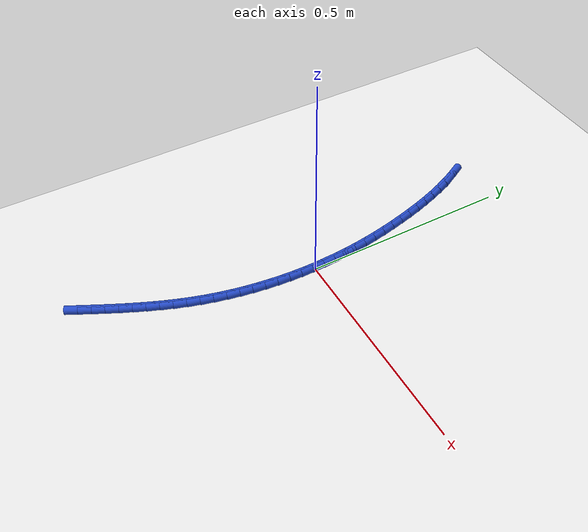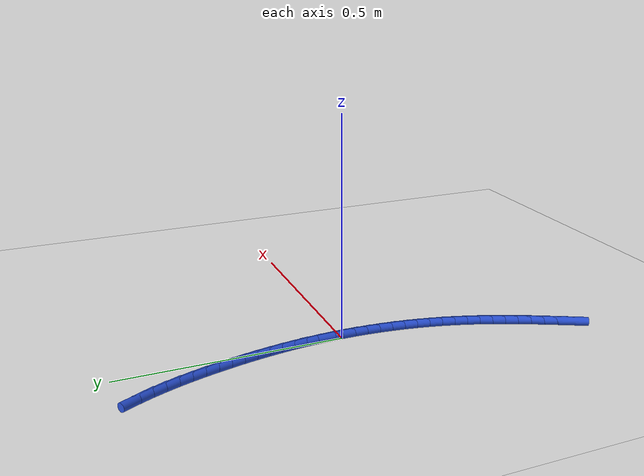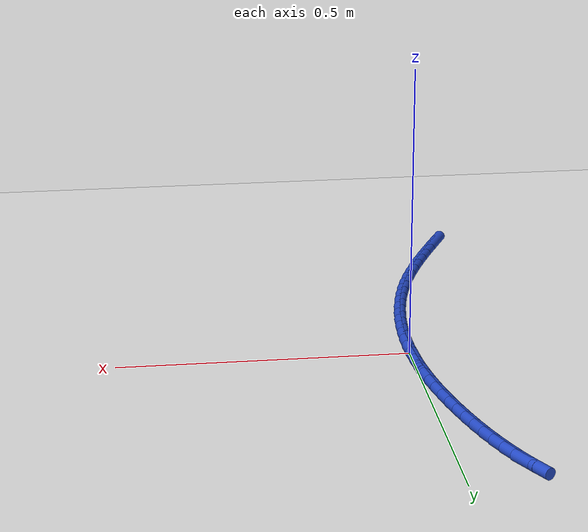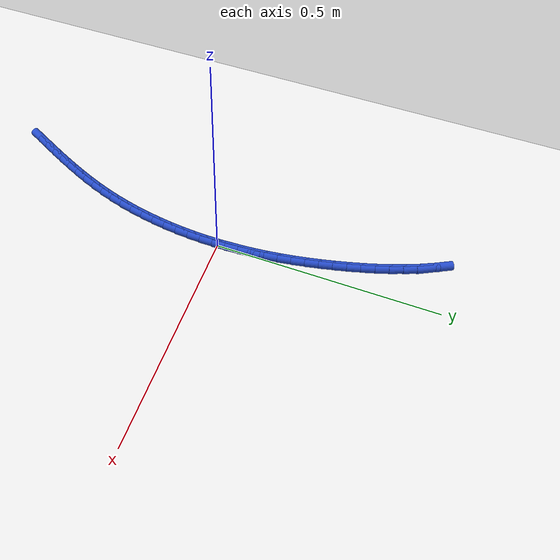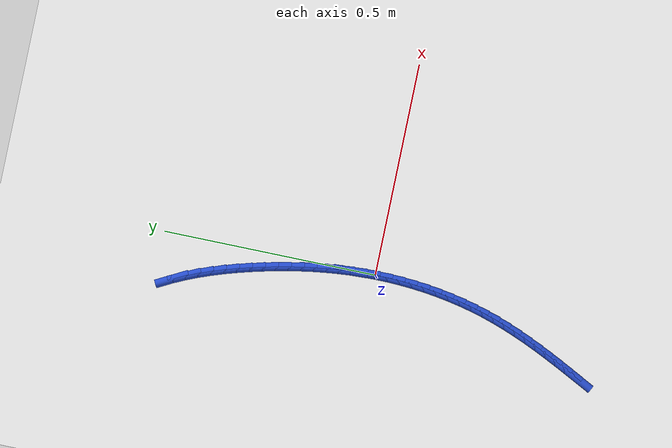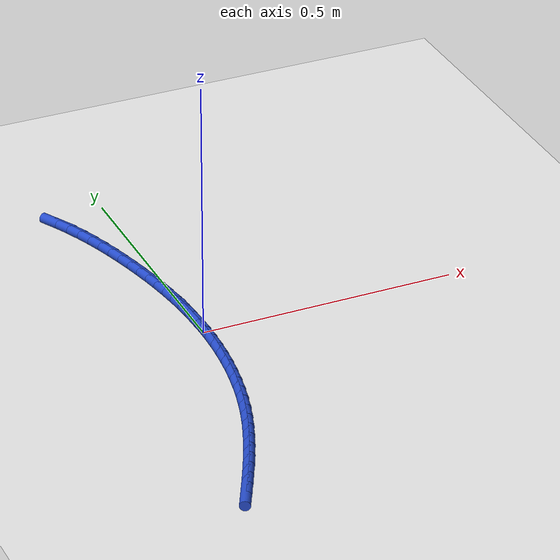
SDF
<sdf version="1.6">
 <world name="default">
  <model name="ground_plane">
   <static>1</static>
   <link name="link">
    <collision name="collision">
     <geometry><plane><normal>0 0 1</normal><size>100 100</size></plane></geometry>
     <surface><friction><ode><mu>100</mu><mu2>50</mu2></ode></friction></surface>
    </collision>
    <visual name="visual">
     <cast_shadows>0</cast_shadows>
     <geometry><plane><normal>0 0 1</normal><size>100 100</size></plane></geometry>
     <material>
      <script><uri>file://media/materials/scripts/gazebo.material</uri><name>Gazebo/WhiteGlow</name></script>
     </material>
    </visual>
   </link>
  </model>
  <model name="line">
   <link name="link_0">
    <pose>-3.469446951953614e-18 -4.163336342344337e-17 0.01 0 1.57 -1.5466826521365722</pose>
    <collision name="collision">
     <geometry><cylinder><radius>0.01</radius><length>0.08</length></cylinder></geometry>
    </collision>
    <visual name="visual">
     <material>
      <script><name>Gazebo/Blue</name><uri>file://media/materials/scripts/gazebo.material</uri></script>
     </material>
     <geometry><cylinder><radius>0.01</radius><length>0.08</length></cylinder></geometry>
    </visual>
   </link>
   <link name="link_1">
    <pose>-0.0007096333509930941 0.029422964868558183 0.01 0 1.57 -1.5170776853234302</pose>
    <collision name="collision">
     <geometry><cylinder><radius>0.01</radius><length>0.08</length></cylinder></geometry>
    </collision>
    <visual name="visual">
     <material>
      <script><name>Gazebo/Blue</name><uri>file://media/materials/scripts/gazebo.material</uri></script>
     </material>
     <geometry><cylinder><radius>0.01</radius><length>0.08</length></cylinder></geometry>
    </visual>
   </link>
   <link name="link_2">
    <pose>-0.0022868037492940483 0.05875455232076186 0.01 0 1.57 -1.4883658231498254</pose>
    <collision name="collision">
     <geometry><cylinder><radius>0.01</radius><length>0.08</length></cylinder></geometry>
    </collision>
    <visual name="visual">
     <material>
      <script><name>Gazebo/Blue</name><uri>file://media/materials/scripts/gazebo.material</uri></script>
     </material>
     <geometry><cylinder><radius>0.01</radius><length>0.08</length></cylinder></geometry>
    </visual>
   </link>
   <link name="link_3">
    <pose>-0.004703602148593343 0.08800734023232486 0.01 0 1.57 -1.4606276589522176</pose>
    <collision name="collision">
     <geometry><cylinder><radius>0.01</radius><length>0.08</length></cylinder></geometry>
    </collision>
    <visual name="visual">
     <material>
      <script><name>Gazebo/Blue</name><uri>file://media/materials/scripts/gazebo.material</uri></script>
     </material>
     <geometry><cylinder><radius>0.01</radius><length>0.08</length></cylinder></geometry>
    </visual>
   </link>
   <link name="link_4">
    <pose>-0.00793211950258145 0.11719390647896095 0.01 0 1.57 -1.4339324970044878</pose>
    <collision name="collision">
     <geometry><cylinder><radius>0.01</radius><length>0.08</length></cylinder></geometry>
    </collision>
    <visual name="visual">
     <material>
      <script><name>Gazebo/Blue</name><uri>file://media/materials/scripts/gazebo.material</uri></script>
     </material>
     <geometry><cylinder><radius>0.01</radius><length>0.08</length></cylinder></geometry>
    </visual>
   </link>
   <link name="link_5">
    <pose>-0.011944446764948845 0.14632682893638393 0.01 0 1.57 -1.4083383048291738</pose>
    <collision name="collision">
     <geometry><cylinder><radius>0.01</radius><length>0.08</length></cylinder></geometry>
    </collision>
    <visual name="visual">
     <material>
      <script><name>Gazebo/Blue</name><uri>file://media/materials/scripts/gazebo.material</uri></script>
     </material>
     <geometry><cylinder><radius>0.01</radius><length>0.08</length></cylinder></geometry>
    </visual>
   </link>
   <link name="link_6">
    <pose>-0.016712674889385996 0.17541868548030773 0.01 0 1.57 -1.3838919719361213</pose>
    <collision name="collision">
     <geometry><cylinder><radius>0.01</radius><length>0.08</length></cylinder></geometry>
    </collision>
    <visual name="visual">
     <material>
      <script><name>Gazebo/Blue</name><uri>file://media/materials/scripts/gazebo.material</uri></script>
     </material>
     <geometry><cylinder><radius>0.01</radius><length>0.08</length></cylinder></geometry>
    </visual>
   </link>
   <link name="link_7">
    <pose>-0.02220889482958338 0.20448205398644603 0.01 0 1.57 -1.3606298222673068</pose>
    <collision name="collision">
     <geometry><cylinder><radius>0.01</radius><length>0.08</length></cylinder></geometry>
    </collision>
    <visual name="visual">
     <material>
      <script><name>Gazebo/Blue</name><uri>file://media/materials/scripts/gazebo.material</uri></script>
     </material>
     <geometry><cylinder><radius>0.01</radius><length>0.08</length></cylinder></geometry>
    </visual>
   </link>
   <link name="link_8">
    <pose>-0.028405197539231476 0.23352951233051272 0.01 0 1.57 -1.3385783231318669</pose>
    <collision name="collision">
     <geometry><cylinder><radius>0.01</radius><length>0.08</length></cylinder></geometry>
    </collision>
    <visual name="visual">
     <material>
      <script><name>Gazebo/Blue</name><uri>file://media/materials/scripts/gazebo.material</uri></script>
     </material>
     <geometry><cylinder><radius>0.01</radius><length>0.08</length></cylinder></geometry>
    </visual>
   </link>
   <link name="link_9">
    <pose>-0.03527367397202075 0.26257363838822156 0.01 0 1.57 -1.317455571323649</pose>
    <collision name="collision">
     <geometry><cylinder><radius>0.01</radius><length>0.08</length></cylinder></geometry>
    </collision>
    <visual name="visual">
     <material>
      <script><name>Gazebo/Blue</name><uri>file://media/materials/scripts/gazebo.material</uri></script>
     </material>
     <geometry><cylinder><radius>0.01</radius><length>0.08</length></cylinder></geometry>
    </visual>
   </link>
   <link name="link_10">
    <pose>-0.04279330992532219 0.29161779840882757 0.01 0 1.57 -1.2946354571706151</pose>
    <collision name="collision">
     <geometry><cylinder><radius>0.01</radius><length>0.08</length></cylinder></geometry>
    </collision>
    <visual name="visual">
     <material>
      <script><name>Gazebo/Blue</name><uri>file://media/materials/scripts/gazebo.material</uri></script>
     </material>
     <geometry><cylinder><radius>0.01</radius><length>0.08</length></cylinder></geometry>
    </visual>
   </link>
   <link name="link_11">
    <pose>-0.05100283485617517 0.32058554011318197 0.01 0 1.57 -1.2686417127740708</pose>
    <collision name="collision">
     <geometry><cylinder><radius>0.01</radius><length>0.08</length></cylinder></geometry>
    </collision>
    <visual name="visual">
     <material>
      <script><name>Gazebo/Blue</name><uri>file://media/materials/scripts/gazebo.material</uri></script>
     </material>
     <geometry><cylinder><radius>0.01</radius><length>0.08</length></cylinder></geometry>
    </visual>
   </link>
   <link name="link_12">
    <pose>-0.059971627032978723 0.34935946389762257 0.01 0 1.57 -1.2392683616072475</pose>
    <collision name="collision">
     <geometry><cylinder><radius>0.01</radius><length>0.08</length></cylinder></geometry>
    </collision>
    <visual name="visual">
     <material>
      <script><name>Gazebo/Blue</name><uri>file://media/materials/scripts/gazebo.material</uri></script>
     </material>
     <geometry><cylinder><radius>0.01</radius><length>0.08</length></cylinder></geometry>
    </visual>
   </link>
   <link name="link_13">
    <pose>-0.06976931467259165 0.37782183622316506 0.01 0 1.57 -1.206289774604742</pose>
    <collision name="collision">
     <geometry><cylinder><radius>0.01</radius><length>0.08</length></cylinder></geometry>
    </collision>
    <visual name="visual">
     <material>
      <script><name>Gazebo/Blue</name><uri>file://media/materials/scripts/gazebo.material</uri></script>
     </material>
     <geometry><cylinder><radius>0.01</radius><length>0.08</length></cylinder></geometry>
    </visual>
   </link>
   <link name="link_14">
    <pose>-0.08046552599187284 0.4058549235508256 0.01 0 1.57 -1.169456326770395</pose>
    <collision name="collision">
     <geometry><cylinder><radius>0.01</radius><length>0.08</length></cylinder></geometry>
    </collision>
    <visual name="visual">
     <material>
      <script><name>Gazebo/Blue</name><uri>file://media/materials/scripts/gazebo.material</uri></script>
     </material>
     <geometry><cylinder><radius>0.01</radius><length>0.08</length></cylinder></geometry>
    </visual>
   </link>
   <link name="link_15">
    <pose>-0.0921298892076811 0.4333409923416196 0.01 0 1.57 -1.12850404834102</pose>
    <collision name="collision">
     <geometry><cylinder><radius>0.01</radius><length>0.08</length></cylinder></geometry>
    </collision>
    <visual name="visual">
     <material>
      <script><name>Gazebo/Blue</name><uri>file://media/materials/scripts/gazebo.material</uri></script>
     </material>
     <geometry><cylinder><radius>0.01</radius><length>0.08</length></cylinder></geometry>
    </visual>
   </link>
   <link name="link_16">
    <pose>-0.10483203253687526 0.4601623090565631 0.01 0 1.57 -1.0831688101588135</pose>
    <collision name="collision">
     <geometry><cylinder><radius>0.01</radius><length>0.08</length></cylinder></geometry>
    </collision>
    <visual name="visual">
     <material>
      <script><name>Gazebo/Blue</name><uri>file://media/materials/scripts/gazebo.material</uri></script>
     </material>
     <geometry><cylinder><radius>0.01</radius><length>0.08</length></cylinder></geometry>
    </visual>
   </link>
   <link name="link_212">
    <pose>-0.1387390479582583 -0.5063105870713028 0.01 0 1.57 1.0993949939348273</pose>
    <collision name="collision">
     <geometry><cylinder><radius>0.01</radius><length>0.08</length></cylinder></geometry>
    </collision>
    <visual name="visual">
     <material>
      <script><name>Gazebo/Blue</name><uri>file://media/materials/scripts/gazebo.material</uri></script>
     </material>
     <geometry><cylinder><radius>0.01</radius><length>0.08</length></cylinder></geometry>
    </visual>
   </link>
   <link name="link_213">
    <pose>-0.12516117452560466 -0.47967320744722874 0.01 0 1.57 1.108351036544145</pose>
    <collision name="collision">
     <geometry><cylinder><radius>0.01</radius><length>0.08</length></cylinder></geometry>
    </collision>
    <visual name="visual">
     <material>
      <script><name>Gazebo/Blue</name><uri>file://media/materials/scripts/gazebo.material</uri></script>
     </material>
     <geometry><cylinder><radius>0.01</radius><length>0.08</length></cylinder></geometry>
    </visual>
   </link>
   <link name="link_214">
    <pose>-0.1118943343661037 -0.4530595799924343 0.01 0 1.57 1.1208542659513705</pose>
    <collision name="collision">
     <geometry><cylinder><radius>0.01</radius><length>0.08</length></cylinder></geometry>
    </collision>
    <visual name="visual">
     <material>
      <script><name>Gazebo/Blue</name><uri>file://media/materials/scripts/gazebo.material</uri></script>
     </material>
     <geometry><cylinder><radius>0.01</radius><length>0.08</length></cylinder></geometry>
    </visual>
   </link>
   <link name="link_215">
    <pose>-0.09902524172734731 -0.42641459162426537 0.01 0 1.57 1.1369390435046234</pose>
    <collision name="collision">
     <geometry><cylinder><radius>0.01</radius><length>0.08</length></cylinder></geometry>
    </collision>
    <visual name="visual">
     <material>
      <script><name>Gazebo/Blue</name><uri>file://media/materials/scripts/gazebo.material</uri></script>
     </material>
     <geometry><cylinder><radius>0.01</radius><length>0.08</length></cylinder></geometry>
    </visual>
   </link>
   <link name="link_216">
    <pose>-0.08664061085692835 -0.39968312926006955 0.01 0 1.57 1.1566226788047802</pose>
    <collision name="collision">
     <geometry><cylinder><radius>0.01</radius><length>0.08</length></cylinder></geometry>
    </collision>
    <visual name="visual">
     <material>
      <script><name>Gazebo/Blue</name><uri>file://media/materials/scripts/gazebo.material</uri></script>
     </material>
     <geometry><cylinder><radius>0.01</radius><length>0.08</length></cylinder></geometry>
    </visual>
   </link>
   <link name="link_217">
    <pose>-0.07482715600243867 -0.37281007981719283 0.01 0 1.57 1.1798988165121749</pose>
    <collision name="collision">
     <geometry><cylinder><radius>0.01</radius><length>0.08</length></cylinder></geometry>
    </collision>
    <visual name="visual">
     <material>
      <script><name>Gazebo/Blue</name><uri>file://media/materials/scripts/gazebo.material</uri></script>
     </material>
     <geometry><cylinder><radius>0.01</radius><length>0.08</length></cylinder></geometry>
    </visual>
   </link>
   <link name="link_218">
    <pose>-0.06367159141147047 -0.34574033021298195 0.01 0 1.57 1.20672961482548</pose>
    <collision name="collision">
     <geometry><cylinder><radius>0.01</radius><length>0.08</length></cylinder></geometry>
    </collision>
    <visual name="visual">
     <material>
      <script><name>Gazebo/Blue</name><uri>file://media/materials/scripts/gazebo.material</uri></script>
     </material>
     <geometry><cylinder><radius>0.01</radius><length>0.08</length></cylinder></geometry>
    </visual>
   </link>
   <link name="link_219">
    <pose>-0.053260631331615724 -0.31841876736478253 0.01 0 1.57 1.2370371193594183</pose>
    <collision name="collision">
     <geometry><cylinder><radius>0.01</radius><length>0.08</length></cylinder></geometry>
    </collision>
    <visual name="visual">
     <material>
      <script><name>Gazebo/Blue</name><uri>file://media/materials/scripts/gazebo.material</uri></script>
     </material>
     <geometry><cylinder><radius>0.01</radius><length>0.08</length></cylinder></geometry>
    </visual>
   </link>
   <link name="link_220">
    <pose>-0.043680990010467144 -0.29079027818994246 0.01 0 1.57 1.2706836135030326</pose>
    <collision name="collision">
     <geometry><cylinder><radius>0.01</radius><length>0.08</length></cylinder></geometry>
    </collision>
    <visual name="visual">
     <material>
      <script><name>Gazebo/Blue</name><uri>file://media/materials/scripts/gazebo.material</uri></script>
     </material>
     <geometry><cylinder><radius>0.01</radius><length>0.08</length></cylinder></geometry>
    </visual>
   </link>
   <link name="link_221">
    <pose>-0.03501913517178935 -0.262800031428215 0.01 0 1.57 1.3061874105602598</pose>
    <collision name="collision">
     <geometry><cylinder><radius>0.01</radius><length>0.08</length></cylinder></geometry>
    </collision>
    <visual name="visual">
     <material>
      <script><name>Gazebo/Blue</name><uri>file://media/materials/scripts/gazebo.material</uri></script>
     </material>
     <geometry><cylinder><radius>0.01</radius><length>0.08</length></cylinder></geometry>
    </visual>
   </link>
   <link name="link_222">
    <pose>-0.027331305658221686 -0.23442775303086794 0.01 0 1.57 1.3409652509296077</pose>
    <collision name="collision">
     <geometry><cylinder><radius>0.01</radius><length>0.08</length></cylinder></geometry>
    </collision>
    <visual name="visual">
     <material>
      <script><name>Gazebo/Blue</name><uri>file://media/materials/scripts/gazebo.material</uri></script>
     </material>
     <geometry><cylinder><radius>0.01</radius><length>0.08</length></cylinder></geometry>
    </visual>
   </link>
   <link name="link_223">
    <pose>-0.020614815221804344 -0.20572053124454737 0.01 0 1.57 1.3748216385883074</pose>
    <collision name="collision">
     <geometry><cylinder><radius>0.01</radius><length>0.08</length></cylinder></geometry>
    </collision>
    <visual name="visual">
     <material>
      <script><name>Gazebo/Blue</name><uri>file://media/materials/scripts/gazebo.material</uri></script>
     </material>
     <geometry><cylinder><radius>0.01</radius><length>0.08</length></cylinder></geometry>
    </visual>
   </link>
   <link name="link_224">
    <pose>-0.014860177239596019 -0.17673322840438477 0.01 0 1.57 1.40786274132127</pose>
    <collision name="collision">
     <geometry><cylinder><radius>0.01</radius><length>0.08</length></cylinder></geometry>
    </collision>
    <visual name="visual">
     <material>
      <script><name>Gazebo/Blue</name><uri>file://media/materials/scripts/gazebo.material</uri></script>
     </material>
     <geometry><cylinder><radius>0.01</radius><length>0.08</length></cylinder></geometry>
    </visual>
   </link>
   <link name="link_225">
    <pose>-0.010057905088654897 -0.14752070684550964 0.01 0 1.57 1.440195596848532</pose>
    <collision name="collision">
     <geometry><cylinder><radius>0.01</radius><length>0.08</length></cylinder></geometry>
    </collision>
    <visual name="visual">
     <material>
      <script><name>Gazebo/Blue</name><uri>file://media/materials/scripts/gazebo.material</uri></script>
     </material>
     <geometry><cylinder><radius>0.01</radius><length>0.08</length></cylinder></geometry>
    </visual>
   </link>
   <link name="link_226">
    <pose>-0.0061985121460393314 -0.11813782890305202 0.01 0 1.57 1.4719278105581377</pose>
    <collision name="collision">
     <geometry><cylinder><radius>0.01</radius><length>0.08</length></cylinder></geometry>
    </collision>
    <visual name="visual">
     <material>
      <script><name>Gazebo/Blue</name><uri>file://media/materials/scripts/gazebo.material</uri></script>
     </material>
     <geometry><cylinder><radius>0.01</radius><length>0.08</length></cylinder></geometry>
    </visual>
   </link>
   <link name="link_227">
    <pose>-0.0032725117888076968 -0.08863945691214221 0.01 0 1.57 1.503167485717332</pose>
    <collision name="collision">
     <geometry><cylinder><radius>0.01</radius><length>0.08</length></cylinder></geometry>
    </collision>
    <visual name="visual">
     <material>
      <script><name>Gazebo/Blue</name><uri>file://media/materials/scripts/gazebo.material</uri></script>
     </material>
     <geometry><cylinder><radius>0.01</radius><length>0.08</length></cylinder></geometry>
    </visual>
   </link>
   <link name="link_228">
    <pose>-0.001270417394018313 -0.059080453207909514 0.01 0 1.57 1.5340233491082957</pose>
    <collision name="collision">
     <geometry><cylinder><radius>0.01</radius><length>0.08</length></cylinder></geometry>
    </collision>
    <visual name="visual">
     <material>
      <script><name>Gazebo/Blue</name><uri>file://media/materials/scripts/gazebo.material</uri></script>
     </material>
     <geometry><cylinder><radius>0.01</radius><length>0.08</length></cylinder></geometry>
    </visual>
   </link>
   <link name="link_229">
    <pose>-0.00018274233872964682 -0.02951568012548559 0.01 0 1.57 1.5646050412481645</pose>
    <collision name="collision">
     <geometry><cylinder><radius>0.01</radius><length>0.08</length></cylinder></geometry>
    </collision>
    <visual name="visual">
     <material>
      <script><name>Gazebo/Blue</name><uri>file://media/materials/scripts/gazebo.material</uri></script>
     </material>
     <geometry><cylinder><radius>0.01</radius><length>0.08</length></cylinder></geometry>
    </visual>
   </link>
   <link name="link_230">
    <pose>8.673617379884035e-19 1.3877787807814457e-16 0.01 0 1.57 -1.5465691075127905</pose>
    <collision name="collision">
     <geometry><cylinder><radius>0.01</radius><length>0.08</length></cylinder></geometry>
    </collision>
    <visual name="visual">
     <material>
      <script><name>Gazebo/Blue</name><uri>file://media/materials/scripts/gazebo.material</uri></script>
     </material>
     <geometry><cylinder><radius>0.01</radius><length>0.08</length></cylinder></geometry>
    </visual>
   </link>
   <link name="link_231">
    <pose>-0.0007127037548877368 0.029411724833417557 0.01 0 1.57 -1.5162009137004513</pose>
    <collision name="collision">
     <geometry><cylinder><radius>0.01</radius><length>0.08</length></cylinder></geometry>
    </collision>
    <visual name="visual">
     <material>
      <script><name>Gazebo/Blue</name><uri>file://media/materials/scripts/gazebo.material</uri></script>
     </material>
     <geometry><cylinder><radius>0.01</radius><length>0.08</length></cylinder></geometry>
    </visual>
   </link>
   <link name="link_232">
    <pose>-0.002311366980451219 0.05866463203963645 0.01 0 1.57 -1.5314170277434689</pose>
    <collision name="collision">
     <geometry><cylinder><radius>0.01</radius><length>0.08</length></cylinder></geometry>
    </collision>
    <visual name="visual">
     <material>
      <script><name>Gazebo/Blue</name><uri>file://media/materials/scripts/gazebo.material</uri></script>
     </material>
     <geometry><cylinder><radius>0.01</radius><length>0.08</length></cylinder></geometry>
    </visual>
   </link>
  </model>
 </world>
</sdf>
